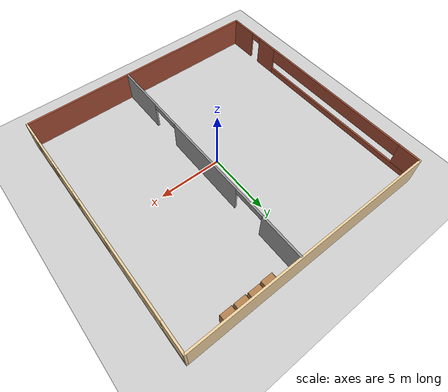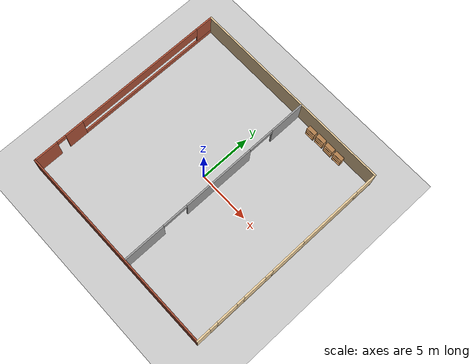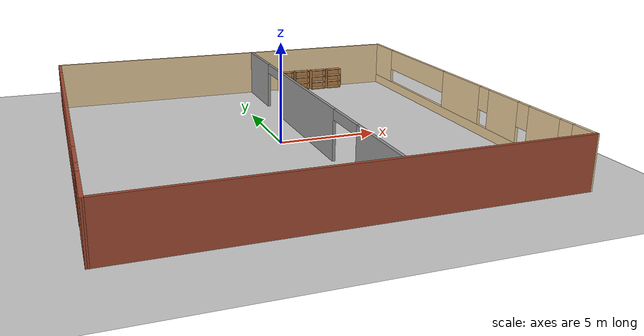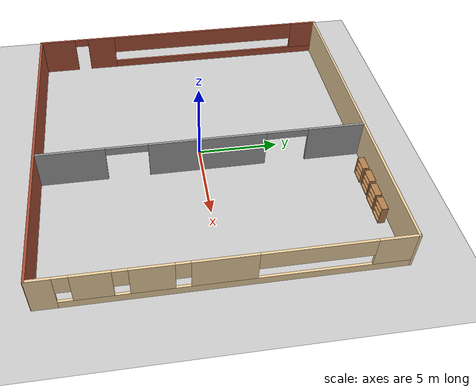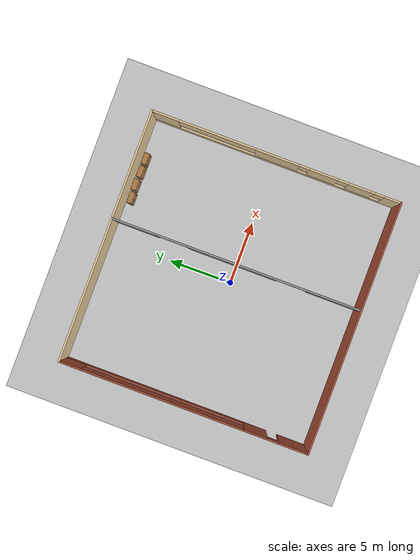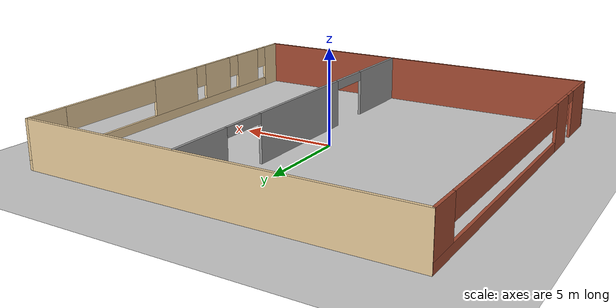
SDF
<sdf version="1.6">
 <world name="default">
  <model name="ground_plane">
   <static>1</static>
   <link name="link">
    <collision name="collision">
     <geometry><plane><normal>0 0 1</normal><size>100 100</size></plane></geometry>
     <surface><friction><ode><mu>100</mu><mu2>50</mu2></ode></friction></surface>
    </collision>
    <visual name="visual">
     <cast_shadows>0</cast_shadows>
     <geometry><plane><normal>0 0 1</normal><size>100 100</size></plane></geometry>
     <material>
      <script><uri>file://media/materials/scripts/gazebo.material</uri><name>Gazebo/Grey</name></script>
     </material>
    </visual>
   </link>
  </model>
  <model name="bookshelf">
   <static>1</static>
   <link name="link">
    <inertial><mass>1</mass></inertial>
    <collision name="back">
     <pose>0 0.005 0.6 0 -0 0</pose>
     <geometry><box><size>0.9 0.01 1.2</size></box></geometry>
    </collision>
    <visual name="visual1">
     <pose>0 0.005 0.6 0 -0 0</pose>
     <geometry><box><size>0.9 0.01 1.2</size></box></geometry>
     <material>
      <script><uri>file://media/materials/scripts/gazebo.material</uri><name>Gazebo/Wood</name></script>
     </material>
    </visual>
    <collision name="left_side">
     <pose>0.45 -0.195 0.6 0 -0 0</pose>
     <geometry><box><size>0.02 0.4 1.2</size></box></geometry>
    </collision>
    <visual name="visual2">
     <pose>0.45 -0.195 0.6 0 -0 0</pose>
     <geometry><box><size>0.02 0.4 1.2</size></box></geometry>
     <material>
      <script><uri>file://media/materials/scripts/gazebo.material</uri><name>Gazebo/Wood</name></script>
     </material>
    </visual>
    <collision name="right_side">
     <pose>-0.45 -0.195 0.6 0 -0 0</pose>
     <geometry><box><size>0.02 0.4 1.2</size></box></geometry>
    </collision>
    <visual name="visual3">
     <pose>-0.45 -0.195 0.6 0 -0 0</pose>
     <geometry><box><size>0.02 0.4 1.2</size></box></geometry>
     <material>
      <script><uri>file://media/materials/scripts/gazebo.material</uri><name>Gazebo/Wood</name></script>
     </material>
    </visual>
    <collision name="bottom">
     <pose>0 -0.195 0.03 0 -0 0</pose>
     <geometry><box><size>0.88 0.4 0.06</size></box></geometry>
    </collision>
    <visual name="visual4">
     <pose>0 -0.195 0.03 0 -0 0</pose>
     <geometry><box><size>0.88 0.4 0.06</size></box></geometry>
     <material>
      <script><uri>file://media/materials/scripts/gazebo.material</uri><name>Gazebo/Wood</name></script>
     </material>
    </visual>
    <collision name="top">
     <pose>0 -0.195 1.19 0 -0 0</pose>
     <geometry><box><size>0.88 0.4 0.02</size></box></geometry>
    </collision>
    <visual name="visual5">
     <pose>0 -0.195 1.19 0 -0 0</pose>
     <geometry><box><size>0.88 0.4 0.02</size></box></geometry>
     <material>
      <script><uri>file://media/materials/scripts/gazebo.material</uri><name>Gazebo/Wood</name></script>
     </material>
    </visual>
    <collision name="low_shelf">
     <pose>0 -0.195 0.43 0 -0 0</pose>
     <geometry><box><size>0.88 0.4 0.02</size></box></geometry>
    </collision>
    <visual name="visual6">
     <pose>0 -0.195 0.43 0 -0 0</pose>
     <geometry><box><size>0.88 0.4 0.02</size></box></geometry>
     <material>
      <script><uri>file://media/materials/scripts/gazebo.material</uri><name>Gazebo/Wood</name></script>
     </material>
    </visual>
    <collision name="high_shelf">
     <pose>0 -0.195 0.8 0 -0 0</pose>
     <geometry><box><size>0.88 0.4 0.02</size></box></geometry>
    </collision>
    <visual name="visual7">
     <pose>0 -0.195 0.8 0 -0 0</pose>
     <geometry><box><size>0.88 0.4 0.02</size></box></geometry>
     <material>
      <script><uri>file://media/materials/scripts/gazebo.material</uri><name>Gazebo/Wood</name></script>
     </material>
    </visual>
   </link>
   <pose>3.49368 9.61547 0 0 -0 0</pose>
  </model>
  <model name="bookshelf_clone">
   <static>1</static>
   <link name="link">
    <inertial><mass>1</mass></inertial>
    <collision name="back">
     <pose>0 0.005 0.6 0 -0 0</pose>
     <geometry><box><size>0.9 0.01 1.2</size></box></geometry>
    </collision>
    <visual name="visual1">
     <pose>0 0.005 0.6 0 -0 0</pose>
     <geometry><box><size>0.9 0.01 1.2</size></box></geometry>
     <material>
      <script><uri>file://media/materials/scripts/gazebo.material</uri><name>Gazebo/Wood</name></script>
     </material>
    </visual>
    <collision name="left_side">
     <pose>0.45 -0.195 0.6 0 -0 0</pose>
     <geometry><box><size>0.02 0.4 1.2</size></box></geometry>
    </collision>
    <visual name="visual2">
     <pose>0.45 -0.195 0.6 0 -0 0</pose>
     <geometry><box><size>0.02 0.4 1.2</size></box></geometry>
     <material>
      <script><uri>file://media/materials/scripts/gazebo.material</uri><name>Gazebo/Wood</name></script>
     </material>
    </visual>
    <collision name="right_side">
     <pose>-0.45 -0.195 0.6 0 -0 0</pose>
     <geometry><box><size>0.02 0.4 1.2</size></box></geometry>
    </collision>
    <visual name="visual3">
     <pose>-0.45 -0.195 0.6 0 -0 0</pose>
     <geometry><box><size>0.02 0.4 1.2</size></box></geometry>
     <material>
      <script><uri>file://media/materials/scripts/gazebo.material</uri><name>Gazebo/Wood</name></script>
     </material>
    </visual>
    <collision name="bottom">
     <pose>0 -0.195 0.03 0 -0 0</pose>
     <geometry><box><size>0.88 0.4 0.06</size></box></geometry>
    </collision>
    <visual name="visual4">
     <pose>0 -0.195 0.03 0 -0 0</pose>
     <geometry><box><size>0.88 0.4 0.06</size></box></geometry>
     <material>
      <script><uri>file://media/materials/scripts/gazebo.material</uri><name>Gazebo/Wood</name></script>
     </material>
    </visual>
    <collision name="top">
     <pose>0 -0.195 1.19 0 -0 0</pose>
     <geometry><box><size>0.88 0.4 0.02</size></box></geometry>
    </collision>
    <visual name="visual5">
     <pose>0 -0.195 1.19 0 -0 0</pose>
     <geometry><box><size>0.88 0.4 0.02</size></box></geometry>
     <material>
      <script><uri>file://media/materials/scripts/gazebo.material</uri><name>Gazebo/Wood</name></script>
     </material>
    </visual>
    <collision name="low_shelf">
     <pose>0 -0.195 0.43 0 -0 0</pose>
     <geometry><box><size>0.88 0.4 0.02</size></box></geometry>
    </collision>
    <visual name="visual6">
     <pose>0 -0.195 0.43 0 -0 0</pose>
     <geometry><box><size>0.88 0.4 0.02</size></box></geometry>
     <material>
      <script><uri>file://media/materials/scripts/gazebo.material</uri><name>Gazebo/Wood</name></script>
     </material>
    </visual>
    <collision name="high_shelf">
     <pose>0 -0.195 0.8 0 -0 0</pose>
     <geometry><box><size>0.88 0.4 0.02</size></box></geometry>
    </collision>
    <visual name="visual7">
     <pose>0 -0.195 0.8 0 -0 0</pose>
     <geometry><box><size>0.88 0.4 0.02</size></box></geometry>
     <material>
      <script><uri>file://media/materials/scripts/gazebo.material</uri><name>Gazebo/Wood</name></script>
     </material>
    </visual>
   </link>
   <pose>4.54936 9.66295 0 0 -0 0</pose>
  </model>
  <model name="bookshelf_clone_0">
   <static>1</static>
   <link name="link">
    <inertial><mass>1</mass></inertial>
    <collision name="back">
     <pose>0 0.005 0.6 0 -0 0</pose>
     <geometry><box><size>0.9 0.01 1.2</size></box></geometry>
    </collision>
    <visual name="visual1">
     <pose>0 0.005 0.6 0 -0 0</pose>
     <geometry><box><size>0.9 0.01 1.2</size></box></geometry>
     <material>
      <script><uri>file://media/materials/scripts/gazebo.material</uri><name>Gazebo/Wood</name></script>
     </material>
    </visual>
    <collision name="left_side">
     <pose>0.45 -0.195 0.6 0 -0 0</pose>
     <geometry><box><size>0.02 0.4 1.2</size></box></geometry>
    </collision>
    <visual name="visual2">
     <pose>0.45 -0.195 0.6 0 -0 0</pose>
     <geometry><box><size>0.02 0.4 1.2</size></box></geometry>
     <material>
      <script><uri>file://media/materials/scripts/gazebo.material</uri><name>Gazebo/Wood</name></script>
     </material>
    </visual>
    <collision name="right_side">
     <pose>-0.45 -0.195 0.6 0 -0 0</pose>
     <geometry><box><size>0.02 0.4 1.2</size></box></geometry>
    </collision>
    <visual name="visual3">
     <pose>-0.45 -0.195 0.6 0 -0 0</pose>
     <geometry><box><size>0.02 0.4 1.2</size></box></geometry>
     <material>
      <script><uri>file://media/materials/scripts/gazebo.material</uri><name>Gazebo/Wood</name></script>
     </material>
    </visual>
    <collision name="bottom">
     <pose>0 -0.195 0.03 0 -0 0</pose>
     <geometry><box><size>0.88 0.4 0.06</size></box></geometry>
    </collision>
    <visual name="visual4">
     <pose>0 -0.195 0.03 0 -0 0</pose>
     <geometry><box><size>0.88 0.4 0.06</size></box></geometry>
     <material>
      <script><uri>file://media/materials/scripts/gazebo.material</uri><name>Gazebo/Wood</name></script>
     </material>
    </visual>
    <collision name="top">
     <pose>0 -0.195 1.19 0 -0 0</pose>
     <geometry><box><size>0.88 0.4 0.02</size></box></geometry>
    </collision>
    <visual name="visual5">
     <pose>0 -0.195 1.19 0 -0 0</pose>
     <geometry><box><size>0.88 0.4 0.02</size></box></geometry>
     <material>
      <script><uri>file://media/materials/scripts/gazebo.material</uri><name>Gazebo/Wood</name></script>
     </material>
    </visual>
    <collision name="low_shelf">
     <pose>0 -0.195 0.43 0 -0 0</pose>
     <geometry><box><size>0.88 0.4 0.02</size></box></geometry>
    </collision>
    <visual name="visual6">
     <pose>0 -0.195 0.43 0 -0 0</pose>
     <geometry><box><size>0.88 0.4 0.02</size></box></geometry>
     <material>
      <script><uri>file://media/materials/scripts/gazebo.material</uri><name>Gazebo/Wood</name></script>
     </material>
    </visual>
    <collision name="high_shelf">
     <pose>0 -0.195 0.8 0 -0 0</pose>
     <geometry><box><size>0.88 0.4 0.02</size></box></geometry>
    </collision>
    <visual name="visual7">
     <pose>0 -0.195 0.8 0 -0 0</pose>
     <geometry><box><size>0.88 0.4 0.02</size></box></geometry>
     <material>
      <script><uri>file://media/materials/scripts/gazebo.material</uri><name>Gazebo/Wood</name></script>
     </material>
    </visual>
   </link>
   <pose>5.61977 9.63241 0 0 -0 0</pose>
  </model>
  <model name="bookshelf_clone_1">
   <static>1</static>
   <link name="link">
    <inertial><mass>1</mass></inertial>
    <collision name="back">
     <pose>0 0.005 0.6 0 -0 0</pose>
     <geometry><box><size>0.9 0.01 1.2</size></box></geometry>
    </collision>
    <visual name="visual1">
     <pose>0 0.005 0.6 0 -0 0</pose>
     <geometry><box><size>0.9 0.01 1.2</size></box></geometry>
     <material>
      <script><uri>file://media/materials/scripts/gazebo.material</uri><name>Gazebo/Wood</name></script>
     </material>
    </visual>
    <collision name="left_side">
     <pose>0.45 -0.195 0.6 0 -0 0</pose>
     <geometry><box><size>0.02 0.4 1.2</size></box></geometry>
    </collision>
    <visual name="visual2">
     <pose>0.45 -0.195 0.6 0 -0 0</pose>
     <geometry><box><size>0.02 0.4 1.2</size></box></geometry>
     <material>
      <script><uri>file://media/materials/scripts/gazebo.material</uri><name>Gazebo/Wood</name></script>
     </material>
    </visual>
    <collision name="right_side">
     <pose>-0.45 -0.195 0.6 0 -0 0</pose>
     <geometry><box><size>0.02 0.4 1.2</size></box></geometry>
    </collision>
    <visual name="visual3">
     <pose>-0.45 -0.195 0.6 0 -0 0</pose>
     <geometry><box><size>0.02 0.4 1.2</size></box></geometry>
     <material>
      <script><uri>file://media/materials/scripts/gazebo.material</uri><name>Gazebo/Wood</name></script>
     </material>
    </visual>
    <collision name="bottom">
     <pose>0 -0.195 0.03 0 -0 0</pose>
     <geometry><box><size>0.88 0.4 0.06</size></box></geometry>
    </collision>
    <visual name="visual4">
     <pose>0 -0.195 0.03 0 -0 0</pose>
     <geometry><box><size>0.88 0.4 0.06</size></box></geometry>
     <material>
      <script><uri>file://media/materials/scripts/gazebo.material</uri><name>Gazebo/Wood</name></script>
     </material>
    </visual>
    <collision name="top">
     <pose>0 -0.195 1.19 0 -0 0</pose>
     <geometry><box><size>0.88 0.4 0.02</size></box></geometry>
    </collision>
    <visual name="visual5">
     <pose>0 -0.195 1.19 0 -0 0</pose>
     <geometry><box><size>0.88 0.4 0.02</size></box></geometry>
     <material>
      <script><uri>file://media/materials/scripts/gazebo.material</uri><name>Gazebo/Wood</name></script>
     </material>
    </visual>
    <collision name="low_shelf">
     <pose>0 -0.195 0.43 0 -0 0</pose>
     <geometry><box><size>0.88 0.4 0.02</size></box></geometry>
    </collision>
    <visual name="visual6">
     <pose>0 -0.195 0.43 0 -0 0</pose>
     <geometry><box><size>0.88 0.4 0.02</size></box></geometry>
     <material>
      <script><uri>file://media/materials/scripts/gazebo.material</uri><name>Gazebo/Wood</name></script>
     </material>
    </visual>
    <collision name="high_shelf">
     <pose>0 -0.195 0.8 0 -0 0</pose>
     <geometry><box><size>0.88 0.4 0.02</size></box></geometry>
    </collision>
    <visual name="visual7">
     <pose>0 -0.195 0.8 0 -0 0</pose>
     <geometry><box><size>0.88 0.4 0.02</size></box></geometry>
     <material>
      <script><uri>file://media/materials/scripts/gazebo.material</uri><name>Gazebo/Wood</name></script>
     </material>
    </visual>
   </link>
   <pose>6.6652 9.627 0 0 -0 0</pose>
  </model>
  <model name="Untitled">
   <pose>1.45229 0.053387 0 0 -0 0</pose>
   <link name="Wall_5">
    <pose>0 0 0 0 -0 1.5708</pose>
    <visual name="Wall_5_Visual_0">
     <pose>-7.83752 0 1.25 0 -0 0</pose>
     <geometry><box><size>4.07496 0.15 2.5</size></box></geometry>
     <material>
      <script><uri>file://media/materials/scripts/gazebo.material</uri><name>Gazebo/Grey</name></script>
      <ambient>1 1 1 1</ambient>
     </material>
     <meta><layer>0</layer></meta>
    </visual>
    <collision name="Wall_5_Collision_0">
     <geometry><box><size>4.07496 0.15 2.5</size></box></geometry>
     <pose>-7.83752 0 1.25 0 -0 0</pose>
    </collision>
    <visual name="Wall_5_Visual_1">
     <pose>0.282263 0 1.25 0 -0 0</pose>
     <geometry><box><size>7.12632 0.15 2.5</size></box></geometry>
     <material>
      <script><uri>file://media/materials/scripts/gazebo.material</uri><name>Gazebo/Grey</name></script>
      <ambient>1 1 1 1</ambient>
     </material>
     <meta><layer>0</layer></meta>
    </visual>
    <collision name="Wall_5_Collision_1">
     <geometry><box><size>7.12632 0.15 2.5</size></box></geometry>
     <pose>0.282263 0 1.25 0 -0 0</pose>
    </collision>
    <visual name="Wall_5_Visual_2">
     <pose>8.13135 0 1.25 0 -0 0</pose>
     <geometry><box><size>3.4873 0.15 2.5</size></box></geometry>
     <material>
      <script><uri>file://media/materials/scripts/gazebo.material</uri><name>Gazebo/Grey</name></script>
      <ambient>1 1 1 1</ambient>
     </material>
     <meta><layer>0</layer></meta>
    </visual>
    <collision name="Wall_5_Collision_2">
     <geometry><box><size>3.4873 0.15 2.5</size></box></geometry>
     <pose>8.13135 0 1.25 0 -0 0</pose>
    </collision>
    <visual name="Wall_5_Visual_3">
     <pose>-4.54047 0 2.25 0 -0 0</pose>
     <geometry><box><size>2.51914 0.15 0.5</size></box></geometry>
     <material>
      <script><uri>file://media/materials/scripts/gazebo.material</uri><name>Gazebo/Grey</name></script>
      <ambient>1 1 1 1</ambient>
     </material>
     <meta><layer>0</layer></meta>
    </visual>
    <collision name="Wall_5_Collision_3">
     <geometry><box><size>2.51914 0.15 0.5</size></box></geometry>
     <pose>-4.54047 0 2.25 0 -0 0</pose>
    </collision>
    <visual name="Wall_5_Visual_4">
     <pose>5.11656 0 2.25 0 -0 0</pose>
     <geometry><box><size>2.54227 0.15 0.5</size></box></geometry>
     <material>
      <script><uri>file://media/materials/scripts/gazebo.material</uri><name>Gazebo/Grey</name></script>
      <ambient>1 1 1 1</ambient>
     </material>
     <meta><layer>0</layer></meta>
    </visual>
    <collision name="Wall_5_Collision_4">
     <geometry><box><size>2.54227 0.15 0.5</size></box></geometry>
     <pose>5.11656 0 2.25 0 -0 0</pose>
    </collision>
   </link>
   <static>1</static>
  </model>
  <model name="floor-blueprint">
   <link name="Wall_2">
    <pose>2.1e-05 -9.90419 0 0 -0 0.000505</pose>
    <visual name="Wall_2_Visual">
     <pose>0 0 1.25 0 -0 0</pose>
     <geometry><box><size>20.1008 0.15 2.5</size></box></geometry>
     <material>
      <script><uri>file://media/materials/scripts/gazebo.material</uri><name>Gazebo/Bricks</name></script>
      <ambient>1 1 1 1</ambient>
      <shader type="pixel"/>
      <diffuse>1 1 1 1</diffuse>
      <specular>0.2 0.2 0.2 1</specular>
      <emissive>0 0 0 1</emissive>
     </material>
     <meta><layer>0</layer></meta>
    </visual>
    <collision name="Wall_2_Collision">
     <pose>0 0 1.25 0 -0 0</pose>
     <geometry><box><size>20.1008 0.15 2.5</size></box></geometry>
     <surface>
      <friction>
       <ode><mu>1</mu><mu2>1</mu2><fdir1>0 0 0</fdir1><slip1>0</slip1><slip2>0</slip2></ode>
       <torsional>
        <coefficient>1</coefficient>
        <patch_radius>0</patch_radius>
        <surface_radius>0</surface_radius>
        <use_patch_radius>1</use_patch_radius>
        <ode><slip>0</slip></ode>
       </torsional>
      </friction>
      <bounce><restitution_coefficient>0</restitution_coefficient><threshold>1e+06</threshold></bounce>
      <contact>
       <collide_without_contact>0</collide_without_contact>
       <collide_without_contact_bitmask>1</collide_without_contact_bitmask>
       <collide_bitmask>1</collide_bitmask>
       <ode>
        <soft_cfm>0</soft_cfm>
        <soft_erp>0.2</soft_erp>
        <kp>1e+13</kp>
        <kd>1</kd>
        <max_vel>0.01</max_vel>
        <min_depth>0</min_depth>
       </ode>
       <bullet>
        <split_impulse>1</split_impulse>
        <split_impulse_penetration_threshold>-0.01</split_impulse_penetration_threshold>
        <soft_cfm>0</soft_cfm>
        <soft_erp>0.2</soft_erp>
        <kp>1e+13</kp>
        <kd>1</kd>
       </bullet>
      </contact>
     </surface>
    </collision>
   </link>
   <link name="Wall_3">
    <pose>9.97471 0.005693 0 0 -0 1.57087</pose>
    <visual name="Wall_3_Visual_7">
     <pose>-5.32933 0 1.9 0 -0 0</pose>
     <geometry><box><size>0.8 0.15 1.2</size></box></geometry>
     <material>
      <script><uri>file://media/materials/scripts/gazebo.material</uri><name>Gazebo/Grey</name></script>
      <ambient>0.921569 0.807843 0.615686 1</ambient>
      <shader type="pixel"/>
      <diffuse>0.7 0.7 0.7 1</diffuse>
      <specular>0.01 0.01 0.01 1</specular>
      <emissive>0 0 0 1</emissive>
     </material>
     <meta><layer>0</layer></meta>
    </visual>
    <visual name="Wall_3_Visual_0">
     <pose>-9.28869 0 1.25 0 -0 0</pose>
     <geometry><box><size>1.38231 0.15 2.5</size></box></geometry>
     <material>
      <script><uri>file://media/materials/scripts/gazebo.material</uri><name>Gazebo/Grey</name></script>
      <ambient>0.921569 0.807843 0.615686 1</ambient>
      <shader type="pixel"/>
      <diffuse>0.7 0.7 0.7 1</diffuse>
      <specular>0.01 0.01 0.01 1</specular>
      <emissive>0 0 0 1</emissive>
     </material>
     <meta><layer>0</layer></meta>
    </visual>
    <visual name="Wall_3_Visual_1">
     <pose>0.691154 0 0.25 0 -0 0</pose>
     <geometry><box><size>18.5774 0.15 0.5</size></box></geometry>
     <material>
      <script><uri>file://media/materials/scripts/gazebo.material</uri><name>Gazebo/Grey</name></script>
      <ambient>0.921569 0.807843 0.615686 1</ambient>
      <shader type="pixel"/>
      <diffuse>0.7 0.7 0.7 1</diffuse>
      <specular>0.01 0.01 0.01 1</specular>
      <emissive>0 0 0 1</emissive>
     </material>
     <meta><layer>0</layer></meta>
    </visual>
    <visual name="Wall_3_Visual_2">
     <pose>-6.76344 0 1.5 0 -0 0</pose>
     <geometry><box><size>2.0682 0.15 2</size></box></geometry>
     <material>
      <script><uri>file://media/materials/scripts/gazebo.material</uri><name>Gazebo/Grey</name></script>
      <ambient>0.921569 0.807843 0.615686 1</ambient>
      <shader type="pixel"/>
      <diffuse>0.7 0.7 0.7 1</diffuse>
      <specular>0.01 0.01 0.01 1</specular>
      <emissive>0 0 0 1</emissive>
     </material>
     <meta><layer>0</layer></meta>
    </visual>
    <visual name="Wall_3_Visual_3">
     <pose>-3.77959 0 1.5 0 -0 0</pose>
     <geometry><box><size>2.29949 0.15 2</size></box></geometry>
     <material>
      <script><uri>file://media/materials/scripts/gazebo.material</uri><name>Gazebo/Grey</name></script>
      <ambient>0.921569 0.807843 0.615686 1</ambient>
      <shader type="pixel"/>
      <diffuse>0.7 0.7 0.7 1</diffuse>
      <specular>0.01 0.01 0.01 1</specular>
      <emissive>0 0 0 1</emissive>
     </material>
     <meta><layer>0</layer></meta>
    </visual>
    <visual name="Wall_3_Visual_4">
     <pose>-0.101831 0 1.5 0 -0 0</pose>
     <geometry><box><size>3.45603 0.15 2</size></box></geometry>
     <material>
      <script><uri>file://media/materials/scripts/gazebo.material</uri><name>Gazebo/Grey</name></script>
      <ambient>0.921569 0.807843 0.615686 1</ambient>
      <shader type="pixel"/>
      <diffuse>0.7 0.7 0.7 1</diffuse>
      <specular>0.01 0.01 0.01 1</specular>
      <emissive>0 0 0 1</emissive>
     </material>
     <meta><layer>0</layer></meta>
    </visual>
    <visual name="Wall_3_Visual_5">
     <pose>8.86304 0 1.5 0 -0 0</pose>
     <geometry><box><size>2.23361 0.15 2</size></box></geometry>
     <material>
      <script><uri>file://media/materials/scripts/gazebo.material</uri><name>Gazebo/Grey</name></script>
      <ambient>0.921569 0.807843 0.615686 1</ambient>
      <shader type="pixel"/>
      <diffuse>0.7 0.7 0.7 1</diffuse>
      <specular>0.01 0.01 0.01 1</specular>
      <emissive>0 0 0 1</emissive>
     </material>
     <meta><layer>0</layer></meta>
    </visual>
    <visual name="Wall_3_Visual_6">
     <pose>-8.19754 0 1.9 0 -0 0</pose>
     <geometry><box><size>0.8 0.15 1.2</size></box></geometry>
     <material>
      <script><uri>file://media/materials/scripts/gazebo.material</uri><name>Gazebo/Grey</name></script>
      <ambient>0.921569 0.807843 0.615686 1</ambient>
      <shader type="pixel"/>
      <diffuse>0.7 0.7 0.7 1</diffuse>
      <specular>0.01 0.01 0.01 1</specular>
      <emissive>0 0 0 1</emissive>
     </material>
     <meta><layer>0</layer></meta>
    </visual>
    <visual name="Wall_3_Visual_8">
     <pose>-2.22985 0 1.9 0 -0 0</pose>
     <geometry><box><size>0.8 0.15 1.2</size></box></geometry>
     <material>
      <script><uri>file://media/materials/scripts/gazebo.material</uri><name>Gazebo/Grey</name></script>
      <ambient>0.921569 0.807843 0.615686 1</ambient>
      <shader type="pixel"/>
      <diffuse>0.7 0.7 0.7 1</diffuse>
      <specular>0.01 0.01 0.01 1</specular>
      <emissive>0 0 0 1</emissive>
     </material>
     <meta><layer>0</layer></meta>
    </visual>
    <visual name="Wall_3_Visual_9">
     <pose>4.68621 0 1.9 0 -0 0</pose>
     <geometry><box><size>6.12005 0.15 1.2</size></box></geometry>
     <material>
      <script><uri>file://media/materials/scripts/gazebo.material</uri><name>Gazebo/Grey</name></script>
      <ambient>0.921569 0.807843 0.615686 1</ambient>
      <shader type="pixel"/>
      <diffuse>0.7 0.7 0.7 1</diffuse>
      <specular>0.01 0.01 0.01 1</specular>
      <emissive>0 0 0 1</emissive>
     </material>
     <meta><layer>0</layer></meta>
    </visual>
    <collision name="Wall_3_Collision_0">
     <pose>-9.28869 0 1.25 0 -0 0</pose>
     <geometry><box><size>1.38231 0.15 2.5</size></box></geometry>
     <surface>
      <friction>
       <ode><mu>1</mu><mu2>1</mu2><fdir1>0 0 0</fdir1><slip1>0</slip1><slip2>0</slip2></ode>
       <torsional>
        <coefficient>1</coefficient>
        <patch_radius>0</patch_radius>
        <surface_radius>0</surface_radius>
        <use_patch_radius>1</use_patch_radius>
        <ode><slip>0</slip></ode>
       </torsional>
      </friction>
      <bounce><restitution_coefficient>0</restitution_coefficient><threshold>1e+06</threshold></bounce>
      <contact>
       <collide_without_contact>0</collide_without_contact>
       <collide_without_contact_bitmask>1</collide_without_contact_bitmask>
       <collide_bitmask>1</collide_bitmask>
       <ode>
        <soft_cfm>0</soft_cfm>
        <soft_erp>0.2</soft_erp>
        <kp>1e+13</kp>
        <kd>1</kd>
        <max_vel>0.01</max_vel>
        <min_depth>0</min_depth>
       </ode>
       <bullet>
        <split_impulse>1</split_impulse>
        <split_impulse_penetration_threshold>-0.01</split_impulse_penetration_threshold>
        <soft_cfm>0</soft_cfm>
        <soft_erp>0.2</soft_erp>
        <kp>1e+13</kp>
        <kd>1</kd>
       </bullet>
      </contact>
     </surface>
    </collision>
    <collision name="Wall_3_Collision_1">
     <pose>0.691154 0 0.25 0 -0 0</pose>
     <geometry><box><size>18.5774 0.15 0.5</size></box></geometry>
     <surface>
      <friction>
       <ode><mu>1</mu><mu2>1</mu2><fdir1>0 0 0</fdir1><slip1>0</slip1><slip2>0</slip2></ode>
       <torsional>
        <coefficient>1</coefficient>
        <patch_radius>0</patch_radius>
        <surface_radius>0</surface_radius>
        <use_patch_radius>1</use_patch_radius>
        <ode><slip>0</slip></ode>
       </torsional>
      </friction>
      <bounce><restitution_coefficient>0</restitution_coefficient><threshold>1e+06</threshold></bounce>
      <contact>
       <collide_without_contact>0</collide_without_contact>
       <collide_without_contact_bitmask>1</collide_without_contact_bitmask>
       <collide_bitmask>1</collide_bitmask>
       <ode>
        <soft_cfm>0</soft_cfm>
        <soft_erp>0.2</soft_erp>
        <kp>1e+13</kp>
        <kd>1</kd>
        <max_vel>0.01</max_vel>
        <min_depth>0</min_depth>
       </ode>
       <bullet>
        <split_impulse>1</split_impulse>
        <split_impulse_penetration_threshold>-0.01</split_impulse_penetration_threshold>
        <soft_cfm>0</soft_cfm>
        <soft_erp>0.2</soft_erp>
        <kp>1e+13</kp>
        <kd>1</kd>
       </bullet>
      </contact>
     </surface>
    </collision>
    <collision name="Wall_3_Collision_4">
     <pose>-0.101831 0 1.5 0 -0 0</pose>
     <geometry><box><size>3.45603 0.15 2</size></box></geometry>
     <surface>
      <friction>
       <ode><mu>1</mu><mu2>1</mu2><fdir1>0 0 0</fdir1><slip1>0</slip1><slip2>0</slip2></ode>
       <torsional>
        <coefficient>1</coefficient>
        <patch_radius>0</patch_radius>
        <surface_radius>0</surface_radius>
        <use_patch_radius>1</use_patch_radius>
        <ode><slip>0</slip></ode>
       </torsional>
      </friction>
      <bounce><restitution_coefficient>0</restitution_coefficient><threshold>1e+06</threshold></bounce>
      <contact>
       <collide_without_contact>0</collide_without_contact>
       <collide_without_contact_bitmask>1</collide_without_contact_bitmask>
       <collide_bitmask>1</collide_bitmask>
       <ode>
        <soft_cfm>0</soft_cfm>
        <soft_erp>0.2</soft_erp>
        <kp>1e+13</kp>
        <kd>1</kd>
        <max_vel>0.01</max_vel>
        <min_depth>0</min_depth>
       </ode>
       <bullet>
        <split_impulse>1</split_impulse>
        <split_impulse_penetration_threshold>-0.01</split_impulse_penetration_threshold>
        <soft_cfm>0</soft_cfm>
        <soft_erp>0.2</soft_erp>
        <kp>1e+13</kp>
        <kd>1</kd>
       </bullet>
      </contact>
     </surface>
    </collision>
    <collision name="Wall_3_Collision_2">
     <pose>-6.76344 0 1.5 0 -0 0</pose>
     <geometry><box><size>2.0682 0.15 2</size></box></geometry>
     <surface>
      <friction>
       <ode><mu>1</mu><mu2>1</mu2><fdir1>0 0 0</fdir1><slip1>0</slip1><slip2>0</slip2></ode>
       <torsional>
        <coefficient>1</coefficient>
        <patch_radius>0</patch_radius>
        <surface_radius>0</surface_radius>
        <use_patch_radius>1</use_patch_radius>
        <ode><slip>0</slip></ode>
       </torsional>
      </friction>
      <bounce><restitution_coefficient>0</restitution_coefficient><threshold>1e+06</threshold></bounce>
      <contact>
       <collide_without_contact>0</collide_without_contact>
       <collide_without_contact_bitmask>1</collide_without_contact_bitmask>
       <collide_bitmask>1</collide_bitmask>
       <ode>
        <soft_cfm>0</soft_cfm>
        <soft_erp>0.2</soft_erp>
        <kp>1e+13</kp>
        <kd>1</kd>
        <max_vel>0.01</max_vel>
        <min_depth>0</min_depth>
       </ode>
       <bullet>
        <split_impulse>1</split_impulse>
        <split_impulse_penetration_threshold>-0.01</split_impulse_penetration_threshold>
        <soft_cfm>0</soft_cfm>
        <soft_erp>0.2</soft_erp>
        <kp>1e+13</kp>
        <kd>1</kd>
       </bullet>
      </contact>
     </surface>
    </collision>
    <collision name="Wall_3_Collision_3">
     <pose>-3.77959 0 1.5 0 -0 0</pose>
     <geometry><box><size>2.29949 0.15 2</size></box></geometry>
     <surface>
      <friction>
       <ode><mu>1</mu><mu2>1</mu2><fdir1>0 0 0</fdir1><slip1>0</slip1><slip2>0</slip2></ode>
       <torsional>
        <coefficient>1</coefficient>
        <patch_radius>0</patch_radius>
        <surface_radius>0</surface_radius>
        <use_patch_radius>1</use_patch_radius>
        <ode><slip>0</slip></ode>
       </torsional>
      </friction>
      <bounce><restitution_coefficient>0</restitution_coefficient><threshold>1e+06</threshold></bounce>
      <contact>
       <collide_without_contact>0</collide_without_contact>
       <collide_without_contact_bitmask>1</collide_without_contact_bitmask>
       <collide_bitmask>1</collide_bitmask>
       <ode>
        <soft_cfm>0</soft_cfm>
        <soft_erp>0.2</soft_erp>
        <kp>1e+13</kp>
        <kd>1</kd>
        <max_vel>0.01</max_vel>
        <min_depth>0</min_depth>
       </ode>
       <bullet>
        <split_impulse>1</split_impulse>
        <split_impulse_penetration_threshold>-0.01</split_impulse_penetration_threshold>
        <soft_cfm>0</soft_cfm>
        <soft_erp>0.2</soft_erp>
        <kp>1e+13</kp>
        <kd>1</kd>
       </bullet>
      </contact>
     </surface>
    </collision>
    <collision name="Wall_3_Collision_5">
     <pose>8.86304 0 1.5 0 -0 0</pose>
     <geometry><box><size>2.23361 0.15 2</size></box></geometry>
     <surface>
      <friction>
       <ode><mu>1</mu><mu2>1</mu2><fdir1>0 0 0</fdir1><slip1>0</slip1><slip2>0</slip2></ode>
       <torsional>
        <coefficient>1</coefficient>
        <patch_radius>0</patch_radius>
        <surface_radius>0</surface_radius>
        <use_patch_radius>1</use_patch_radius>
        <ode><slip>0</slip></ode>
       </torsional>
      </friction>
      <bounce><restitution_coefficient>0</restitution_coefficient><threshold>1e+06</threshold></bounce>
      <contact>
       <collide_without_contact>0</collide_without_contact>
       <collide_without_contact_bitmask>1</collide_without_contact_bitmask>
       <collide_bitmask>1</collide_bitmask>
       <ode>
        <soft_cfm>0</soft_cfm>
        <soft_erp>0.2</soft_erp>
        <kp>1e+13</kp>
        <kd>1</kd>
        <max_vel>0.01</max_vel>
        <min_depth>0</min_depth>
       </ode>
       <bullet>
        <split_impulse>1</split_impulse>
        <split_impulse_penetration_threshold>-0.01</split_impulse_penetration_threshold>
        <soft_cfm>0</soft_cfm>
        <soft_erp>0.2</soft_erp>
        <kp>1e+13</kp>
        <kd>1</kd>
       </bullet>
      </contact>
     </surface>
    </collision>
    <collision name="Wall_3_Collision_6">
     <pose>-8.19754 0 1.9 0 -0 0</pose>
     <geometry><box><size>0.8 0.15 1.2</size></box></geometry>
     <surface>
      <friction>
       <ode><mu>1</mu><mu2>1</mu2><fdir1>0 0 0</fdir1><slip1>0</slip1><slip2>0</slip2></ode>
       <torsional>
        <coefficient>1</coefficient>
        <patch_radius>0</patch_radius>
        <surface_radius>0</surface_radius>
        <use_patch_radius>1</use_patch_radius>
        <ode><slip>0</slip></ode>
       </torsional>
      </friction>
      <bounce><restitution_coefficient>0</restitution_coefficient><threshold>1e+06</threshold></bounce>
      <contact>
       <collide_without_contact>0</collide_without_contact>
       <collide_without_contact_bitmask>1</collide_without_contact_bitmask>
       <collide_bitmask>1</collide_bitmask>
       <ode>
        <soft_cfm>0</soft_cfm>
        <soft_erp>0.2</soft_erp>
        <kp>1e+13</kp>
        <kd>1</kd>
        <max_vel>0.01</max_vel>
        <min_depth>0</min_depth>
       </ode>
       <bullet>
        <split_impulse>1</split_impulse>
        <split_impulse_penetration_threshold>-0.01</split_impulse_penetration_threshold>
        <soft_cfm>0</soft_cfm>
        <soft_erp>0.2</soft_erp>
        <kp>1e+13</kp>
        <kd>1</kd>
       </bullet>
      </contact>
     </surface>
    </collision>
    <collision name="Wall_3_Collision_8">
     <pose>-2.22985 0 1.9 0 -0 0</pose>
     <geometry><box><size>0.8 0.15 1.2</size></box></geometry>
     <surface>
      <friction>
       <ode><mu>1</mu><mu2>1</mu2><fdir1>0 0 0</fdir1><slip1>0</slip1><slip2>0</slip2></ode>
       <torsional>
        <coefficient>1</coefficient>
        <patch_radius>0</patch_radius>
        <surface_radius>0</surface_radius>
        <use_patch_radius>1</use_patch_radius>
        <ode><slip>0</slip></ode>
       </torsional>
      </friction>
      <bounce><restitution_coefficient>0</restitution_coefficient><threshold>1e+06</threshold></bounce>
      <contact>
       <collide_without_contact>0</collide_without_contact>
       <collide_without_contact_bitmask>1</collide_without_contact_bitmask>
       <collide_bitmask>1</collide_bitmask>
       <ode>
        <soft_cfm>0</soft_cfm>
        <soft_erp>0.2</soft_erp>
        <kp>1e+13</kp>
        <kd>1</kd>
        <max_vel>0.01</max_vel>
        <min_depth>0</min_depth>
       </ode>
       <bullet>
        <split_impulse>1</split_impulse>
        <split_impulse_penetration_threshold>-0.01</split_impulse_penetration_threshold>
        <soft_cfm>0</soft_cfm>
        <soft_erp>0.2</soft_erp>
        <kp>1e+13</kp>
        <kd>1</kd>
       </bullet>
      </contact>
     </surface>
    </collision>
    <collision name="Wall_3_Collision_7">
     <pose>-5.32933 0 1.9 0 -0 0</pose>
     <geometry><box><size>0.8 0.15 1.2</size></box></geometry>
     <surface>
      <friction>
       <ode><mu>1</mu><mu2>1</mu2><fdir1>0 0 0</fdir1><slip1>0</slip1><slip2>0</slip2></ode>
       <torsional>
        <coefficient>1</coefficient>
        <patch_radius>0</patch_radius>
        <surface_radius>0</surface_radius>
        <use_patch_radius>1</use_patch_radius>
        <ode><slip>0</slip></ode>
       </torsional>
      </friction>
      <bounce><restitution_coefficient>0</restitution_coefficient><threshold>1e+06</threshold></bounce>
      <contact>
       <collide_without_contact>0</collide_without_contact>
       <collide_without_contact_bitmask>1</collide_without_contact_bitmask>
       <collide_bitmask>1</collide_bitmask>
       <ode>
        <soft_cfm>0</soft_cfm>
        <soft_erp>0.2</soft_erp>
        <kp>1e+13</kp>
        <kd>1</kd>
        <max_vel>0.01</max_vel>
        <min_depth>0</min_depth>
       </ode>
       <bullet>
        <split_impulse>1</split_impulse>
        <split_impulse_penetration_threshold>-0.01</split_impulse_penetration_threshold>
        <soft_cfm>0</soft_cfm>
        <soft_erp>0.2</soft_erp>
        <kp>1e+13</kp>
        <kd>1</kd>
       </bullet>
      </contact>
     </surface>
    </collision>
    <collision name="Wall_3_Collision_9">
     <pose>4.68621 0 1.9 0 -0 0</pose>
     <geometry><box><size>6.12005 0.15 1.2</size></box></geometry>
     <surface>
      <friction>
       <ode><mu>1</mu><mu2>1</mu2><fdir1>0 0 0</fdir1><slip1>0</slip1><slip2>0</slip2></ode>
       <torsional>
        <coefficient>1</coefficient>
        <patch_radius>0</patch_radius>
        <surface_radius>0</surface_radius>
        <use_patch_radius>1</use_patch_radius>
        <ode><slip>0</slip></ode>
       </torsional>
      </friction>
      <bounce><restitution_coefficient>0</restitution_coefficient><threshold>1e+06</threshold></bounce>
      <contact>
       <collide_without_contact>0</collide_without_contact>
       <collide_without_contact_bitmask>1</collide_without_contact_bitmask>
       <collide_bitmask>1</collide_bitmask>
       <ode>
        <soft_cfm>0</soft_cfm>
        <soft_erp>0.2</soft_erp>
        <kp>1e+13</kp>
        <kd>1</kd>
        <max_vel>0.01</max_vel>
        <min_depth>0</min_depth>
       </ode>
       <bullet>
        <split_impulse>1</split_impulse>
        <split_impulse_penetration_threshold>-0.01</split_impulse_penetration_threshold>
        <soft_cfm>0</soft_cfm>
        <soft_erp>0.2</soft_erp>
        <kp>1e+13</kp>
        <kd>1</kd>
       </bullet>
      </contact>
     </surface>
    </collision>
   </link>
   <link name="Wall_5">
    <pose>-9.96438 -0.010103 0 0 -0 1.56969</pose>
    <visual name="Wall_5_Visual_1">
     <pose>-5.72783 0 1.25 0 -0 0</pose>
     <geometry><box><size>1.87936 0.15 2.5</size></box></geometry>
     <material>
      <script><uri>file://media/materials/scripts/gazebo.material</uri><name>Gazebo/Bricks</name></script>
      <ambient>1 1 1 1</ambient>
      <shader type="pixel"/>
      <diffuse>1 1 1 1</diffuse>
      <specular>0.2 0.2 0.2 1</specular>
      <emissive>0 0 0 1</emissive>
     </material>
     <meta><layer>0</layer></meta>
    </visual>
    <visual name="Wall_5_Visual_2">
     <pose>2.59299 0 0.25 0 -0 0</pose>
     <geometry><box><size>14.7623 0.15 0.5</size></box></geometry>
     <material>
      <script><uri>file://media/materials/scripts/gazebo.material</uri><name>Gazebo/Bricks</name></script>
      <ambient>1 1 1 1</ambient>
      <shader type="pixel"/>
      <diffuse>1 1 1 1</diffuse>
      <specular>0.2 0.2 0.2 1</specular>
      <emissive>0 0 0 1</emissive>
     </material>
     <meta><layer>0</layer></meta>
    </visual>
    <visual name="Wall_5_Visual_0">
     <pose>-8.77082 0 1.25 0 -0 0</pose>
     <geometry><box><size>2.40661 0.15 2.5</size></box></geometry>
     <material>
      <script><uri>file://media/materials/scripts/gazebo.material</uri><name>Gazebo/Bricks</name></script>
      <ambient>1 1 1 1</ambient>
      <shader type="pixel"/>
      <diffuse>1 1 1 1</diffuse>
      <specular>0.2 0.2 0.2 1</specular>
      <emissive>0 0 0 1</emissive>
     </material>
     <meta><layer>0</layer></meta>
    </visual>
    <visual name="Wall_5_Visual_3">
     <pose>9.0761 0 1.5 0 -0 0</pose>
     <geometry><box><size>1.79604 0.15 2</size></box></geometry>
     <material>
      <script><uri>file://media/materials/scripts/gazebo.material</uri><name>Gazebo/Bricks</name></script>
      <ambient>1 1 1 1</ambient>
      <shader type="pixel"/>
      <diffuse>1 1 1 1</diffuse>
      <specular>0.2 0.2 0.2 1</specular>
      <emissive>0 0 0 1</emissive>
     </material>
     <meta><layer>0</layer></meta>
    </visual>
    <visual name="Wall_5_Visual_4">
     <pose>1.69496 0 1.9 0 -0 0</pose>
     <geometry><box><size>12.9662 0.15 1.2</size></box></geometry>
     <material>
      <script><uri>file://media/materials/scripts/gazebo.material</uri><name>Gazebo/Bricks</name></script>
      <ambient>1 1 1 1</ambient>
      <shader type="pixel"/>
      <diffuse>1 1 1 1</diffuse>
      <specular>0.2 0.2 0.2 1</specular>
      <emissive>0 0 0 1</emissive>
     </material>
     <meta><layer>0</layer></meta>
    </visual>
    <visual name="Wall_5_Visual_5">
     <pose>-7.11751 0 2.25 0 -0 0</pose>
     <geometry><box><size>0.9 0.15 0.5</size></box></geometry>
     <material>
      <script><uri>file://media/materials/scripts/gazebo.material</uri><name>Gazebo/Bricks</name></script>
      <ambient>1 1 1 1</ambient>
      <shader type="pixel"/>
      <diffuse>1 1 1 1</diffuse>
      <specular>0.2 0.2 0.2 1</specular>
      <emissive>0 0 0 1</emissive>
     </material>
     <meta><layer>0</layer></meta>
    </visual>
    <collision name="Wall_5_Collision_0">
     <pose>-8.77082 0 1.25 0 -0 0</pose>
     <geometry><box><size>2.40661 0.15 2.5</size></box></geometry>
     <surface>
      <friction>
       <ode><mu>1</mu><mu2>1</mu2><fdir1>0 0 0</fdir1><slip1>0</slip1><slip2>0</slip2></ode>
       <torsional>
        <coefficient>1</coefficient>
        <patch_radius>0</patch_radius>
        <surface_radius>0</surface_radius>
        <use_patch_radius>1</use_patch_radius>
        <ode><slip>0</slip></ode>
       </torsional>
      </friction>
      <bounce><restitution_coefficient>0</restitution_coefficient><threshold>1e+06</threshold></bounce>
      <contact>
       <collide_without_contact>0</collide_without_contact>
       <collide_without_contact_bitmask>1</collide_without_contact_bitmask>
       <collide_bitmask>1</collide_bitmask>
       <ode>
        <soft_cfm>0</soft_cfm>
        <soft_erp>0.2</soft_erp>
        <kp>1e+13</kp>
        <kd>1</kd>
        <max_vel>0.01</max_vel>
        <min_depth>0</min_depth>
       </ode>
       <bullet>
        <split_impulse>1</split_impulse>
        <split_impulse_penetration_threshold>-0.01</split_impulse_penetration_threshold>
        <soft_cfm>0</soft_cfm>
        <soft_erp>0.2</soft_erp>
        <kp>1e+13</kp>
        <kd>1</kd>
       </bullet>
      </contact>
     </surface>
    </collision>
    <collision name="Wall_5_Collision_1">
     <pose>-5.72783 0 1.25 0 -0 0</pose>
     <geometry><box><size>1.87936 0.15 2.5</size></box></geometry>
     <surface>
      <friction>
       <ode><mu>1</mu><mu2>1</mu2><fdir1>0 0 0</fdir1><slip1>0</slip1><slip2>0</slip2></ode>
       <torsional>
        <coefficient>1</coefficient>
        <patch_radius>0</patch_radius>
        <surface_radius>0</surface_radius>
        <use_patch_radius>1</use_patch_radius>
        <ode><slip>0</slip></ode>
       </torsional>
      </friction>
      <bounce><restitution_coefficient>0</restitution_coefficient><threshold>1e+06</threshold></bounce>
      <contact>
       <collide_without_contact>0</collide_without_contact>
       <collide_without_contact_bitmask>1</collide_without_contact_bitmask>
       <collide_bitmask>1</collide_bitmask>
       <ode>
        <soft_cfm>0</soft_cfm>
        <soft_erp>0.2</soft_erp>
        <kp>1e+13</kp>
        <kd>1</kd>
        <max_vel>0.01</max_vel>
        <min_depth>0</min_depth>
       </ode>
       <bullet>
        <split_impulse>1</split_impulse>
        <split_impulse_penetration_threshold>-0.01</split_impulse_penetration_threshold>
        <soft_cfm>0</soft_cfm>
        <soft_erp>0.2</soft_erp>
        <kp>1e+13</kp>
        <kd>1</kd>
       </bullet>
      </contact>
     </surface>
    </collision>
    <collision name="Wall_5_Collision_4">
     <pose>1.69496 0 1.9 0 -0 0</pose>
     <geometry><box><size>12.9662 0.15 1.2</size></box></geometry>
     <surface>
      <friction>
       <ode><mu>1</mu><mu2>1</mu2><fdir1>0 0 0</fdir1><slip1>0</slip1><slip2>0</slip2></ode>
       <torsional>
        <coefficient>1</coefficient>
        <patch_radius>0</patch_radius>
        <surface_radius>0</surface_radius>
        <use_patch_radius>1</use_patch_radius>
        <ode><slip>0</slip></ode>
       </torsional>
      </friction>
      <bounce><restitution_coefficient>0</restitution_coefficient><threshold>1e+06</threshold></bounce>
      <contact>
       <collide_without_contact>0</collide_without_contact>
       <collide_without_contact_bitmask>1</collide_without_contact_bitmask>
       <collide_bitmask>1</collide_bitmask>
       <ode>
        <soft_cfm>0</soft_cfm>
        <soft_erp>0.2</soft_erp>
        <kp>1e+13</kp>
        <kd>1</kd>
        <max_vel>0.01</max_vel>
        <min_depth>0</min_depth>
       </ode>
       <bullet>
        <split_impulse>1</split_impulse>
        <split_impulse_penetration_threshold>-0.01</split_impulse_penetration_threshold>
        <soft_cfm>0</soft_cfm>
        <soft_erp>0.2</soft_erp>
        <kp>1e+13</kp>
        <kd>1</kd>
       </bullet>
      </contact>
     </surface>
    </collision>
    <collision name="Wall_5_Collision_2">
     <pose>2.59299 0 0.25 0 -0 0</pose>
     <geometry><box><size>14.7623 0.15 0.5</size></box></geometry>
     <surface>
      <friction>
       <ode><mu>1</mu><mu2>1</mu2><fdir1>0 0 0</fdir1><slip1>0</slip1><slip2>0</slip2></ode>
       <torsional>
        <coefficient>1</coefficient>
        <patch_radius>0</patch_radius>
        <surface_radius>0</surface_radius>
        <use_patch_radius>1</use_patch_radius>
        <ode><slip>0</slip></ode>
       </torsional>
      </friction>
      <bounce><restitution_coefficient>0</restitution_coefficient><threshold>1e+06</threshold></bounce>
      <contact>
       <collide_without_contact>0</collide_without_contact>
       <collide_without_contact_bitmask>1</collide_without_contact_bitmask>
       <collide_bitmask>1</collide_bitmask>
       <ode>
        <soft_cfm>0</soft_cfm>
        <soft_erp>0.2</soft_erp>
        <kp>1e+13</kp>
        <kd>1</kd>
        <max_vel>0.01</max_vel>
        <min_depth>0</min_depth>
       </ode>
       <bullet>
        <split_impulse>1</split_impulse>
        <split_impulse_penetration_threshold>-0.01</split_impulse_penetration_threshold>
        <soft_cfm>0</soft_cfm>
        <soft_erp>0.2</soft_erp>
        <kp>1e+13</kp>
        <kd>1</kd>
       </bullet>
      </contact>
     </surface>
    </collision>
    <collision name="Wall_5_Collision_5">
     <pose>-7.11751 0 2.25 0 -0 0</pose>
     <geometry><box><size>0.9 0.15 0.5</size></box></geometry>
     <surface>
      <friction>
       <ode><mu>1</mu><mu2>1</mu2><fdir1>0 0 0</fdir1><slip1>0</slip1><slip2>0</slip2></ode>
       <torsional>
        <coefficient>1</coefficient>
        <patch_radius>0</patch_radius>
        <surface_radius>0</surface_radius>
        <use_patch_radius>1</use_patch_radius>
        <ode><slip>0</slip></ode>
       </torsional>
      </friction>
      <bounce><restitution_coefficient>0</restitution_coefficient><threshold>1e+06</threshold></bounce>
      <contact>
       <collide_without_contact>0</collide_without_contact>
       <collide_without_contact_bitmask>1</collide_without_contact_bitmask>
       <collide_bitmask>1</collide_bitmask>
       <ode>
        <soft_cfm>0</soft_cfm>
        <soft_erp>0.2</soft_erp>
        <kp>1e+13</kp>
        <kd>1</kd>
        <max_vel>0.01</max_vel>
        <min_depth>0</min_depth>
       </ode>
       <bullet>
        <split_impulse>1</split_impulse>
        <split_impulse_penetration_threshold>-0.01</split_impulse_penetration_threshold>
        <soft_cfm>0</soft_cfm>
        <soft_erp>0.2</soft_erp>
        <kp>1e+13</kp>
        <kd>1</kd>
       </bullet>
      </contact>
     </surface>
    </collision>
    <collision name="Wall_5_Collision_3">
     <pose>9.0761 0 1.5 0 -0 0</pose>
     <geometry><box><size>1.79604 0.15 2</size></box></geometry>
     <surface>
      <friction>
       <ode><mu>1</mu><mu2>1</mu2><fdir1>0 0 0</fdir1><slip1>0</slip1><slip2>0</slip2></ode>
       <torsional>
        <coefficient>1</coefficient>
        <patch_radius>0</patch_radius>
        <surface_radius>0</surface_radius>
        <use_patch_radius>1</use_patch_radius>
        <ode><slip>0</slip></ode>
       </torsional>
      </friction>
      <bounce><restitution_coefficient>0</restitution_coefficient><threshold>1e+06</threshold></bounce>
      <contact>
       <collide_without_contact>0</collide_without_contact>
       <collide_without_contact_bitmask>1</collide_without_contact_bitmask>
       <collide_bitmask>1</collide_bitmask>
       <ode>
        <soft_cfm>0</soft_cfm>
        <soft_erp>0.2</soft_erp>
        <kp>1e+13</kp>
        <kd>1</kd>
        <max_vel>0.01</max_vel>
        <min_depth>0</min_depth>
       </ode>
       <bullet>
        <split_impulse>1</split_impulse>
        <split_impulse_penetration_threshold>-0.01</split_impulse_penetration_threshold>
        <soft_cfm>0</soft_cfm>
        <soft_erp>0.2</soft_erp>
        <kp>1e+13</kp>
        <kd>1</kd>
       </bullet>
      </contact>
     </surface>
    </collision>
   </link>
   <link name="Wall_7">
    <pose>0.012375 9.90961 0 0 0 -3.1415</pose>
    <visual name="Wall_7_Visual">
     <pose>0 0 1.25 0 -0 0</pose>
     <geometry><box><size>20.0733 0.15 2.5</size></box></geometry>
     <material>
      <script><uri>file://media/materials/scripts/gazebo.material</uri><name>Gazebo/Grey</name></script>
      <ambient>0.921569 0.807843 0.615686 1</ambient>
      <shader type="pixel"/>
      <diffuse>0.7 0.7 0.7 1</diffuse>
      <specular>0.01 0.01 0.01 1</specular>
      <emissive>0 0 0 1</emissive>
     </material>
     <meta><layer>0</layer></meta>
    </visual>
    <collision name="Wall_7_Collision">
     <pose>0 0 1.25 0 -0 0</pose>
     <geometry><box><size>20.0733 0.15 2.5</size></box></geometry>
     <surface>
      <friction>
       <ode><mu>1</mu><mu2>1</mu2><fdir1>0 0 0</fdir1><slip1>0</slip1><slip2>0</slip2></ode>
       <torsional>
        <coefficient>1</coefficient>
        <patch_radius>0</patch_radius>
        <surface_radius>0</surface_radius>
        <use_patch_radius>1</use_patch_radius>
        <ode><slip>0</slip></ode>
       </torsional>
      </friction>
      <bounce><restitution_coefficient>0</restitution_coefficient><threshold>1e+06</threshold></bounce>
      <contact>
       <collide_without_contact>0</collide_without_contact>
       <collide_without_contact_bitmask>1</collide_without_contact_bitmask>
       <collide_bitmask>1</collide_bitmask>
       <ode>
        <soft_cfm>0</soft_cfm>
        <soft_erp>0.2</soft_erp>
        <kp>1e+13</kp>
        <kd>1</kd>
        <max_vel>0.01</max_vel>
        <min_depth>0</min_depth>
       </ode>
       <bullet>
        <split_impulse>1</split_impulse>
        <split_impulse_penetration_threshold>-0.01</split_impulse_penetration_threshold>
        <soft_cfm>0</soft_cfm>
        <soft_erp>0.2</soft_erp>
        <kp>1e+13</kp>
        <kd>1</kd>
       </bullet>
      </contact>
     </surface>
    </collision>
   </link>
   <static>1</static>
   <pose>0.03934 0.036734 0 0 -0 0</pose>
  </model>
 </world>
</sdf>
